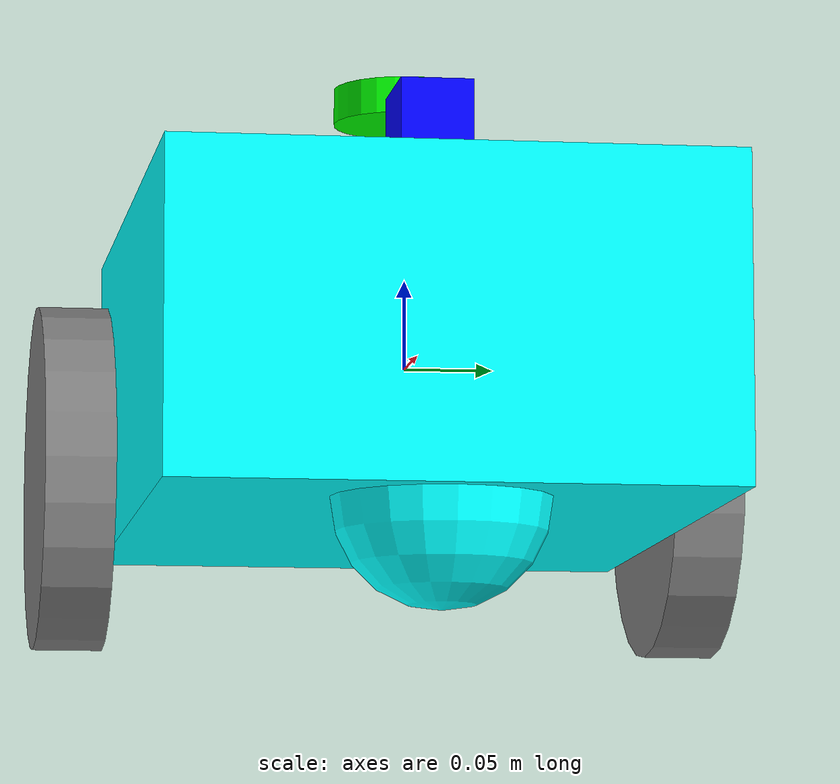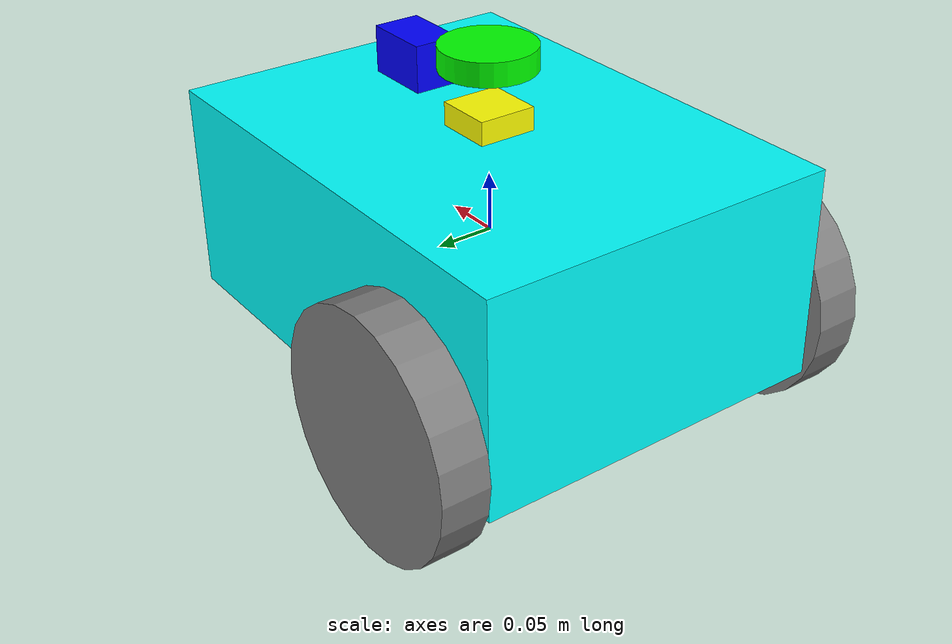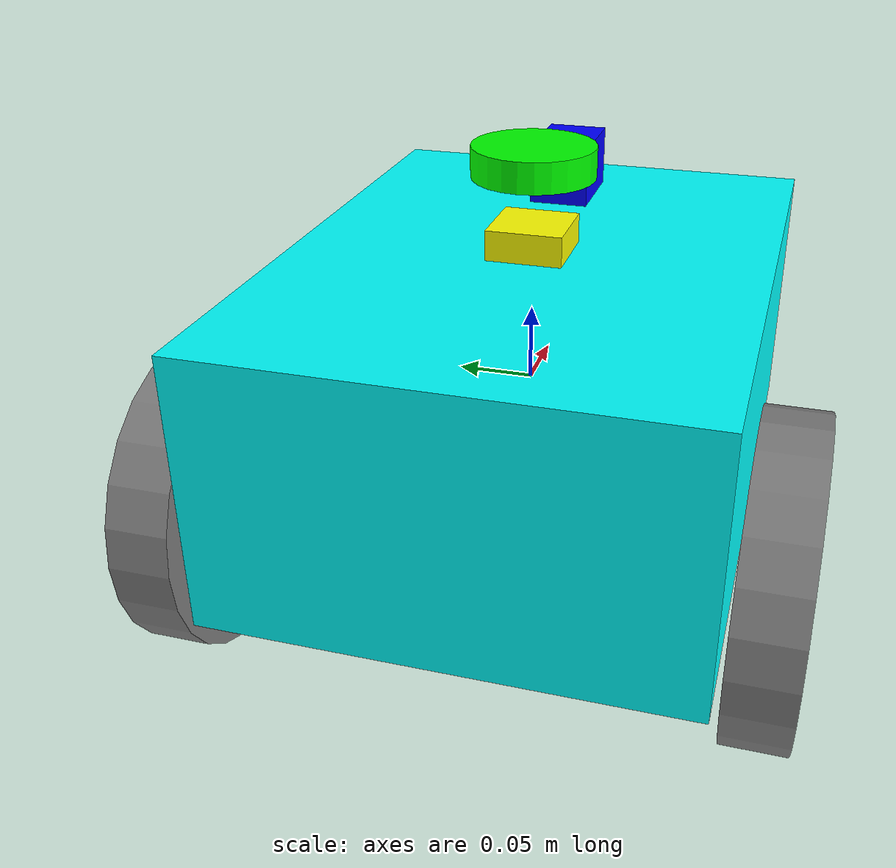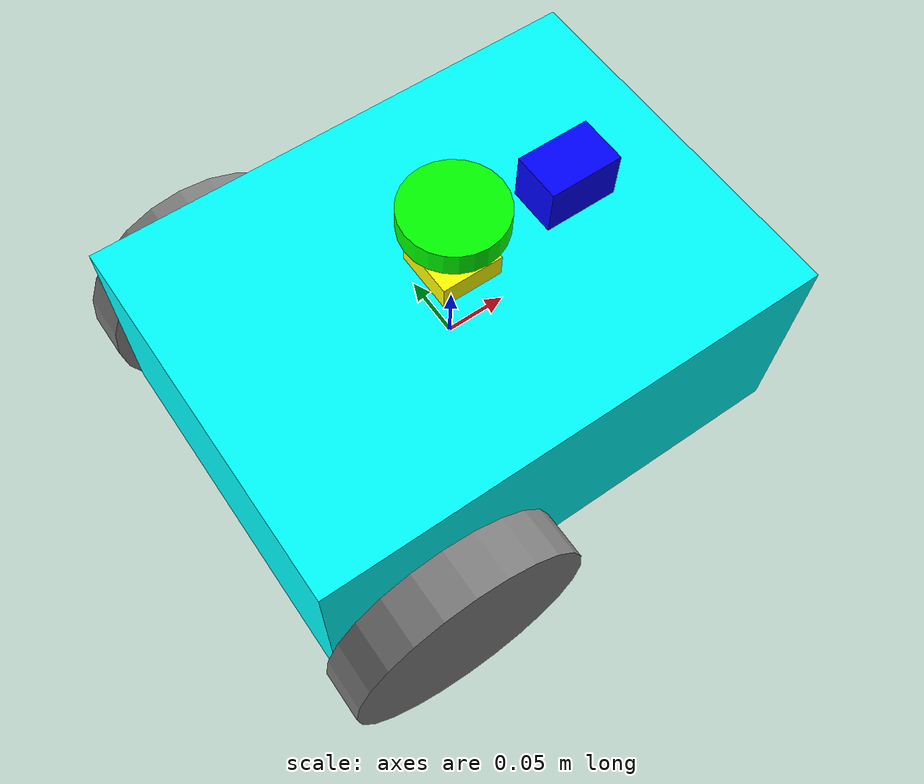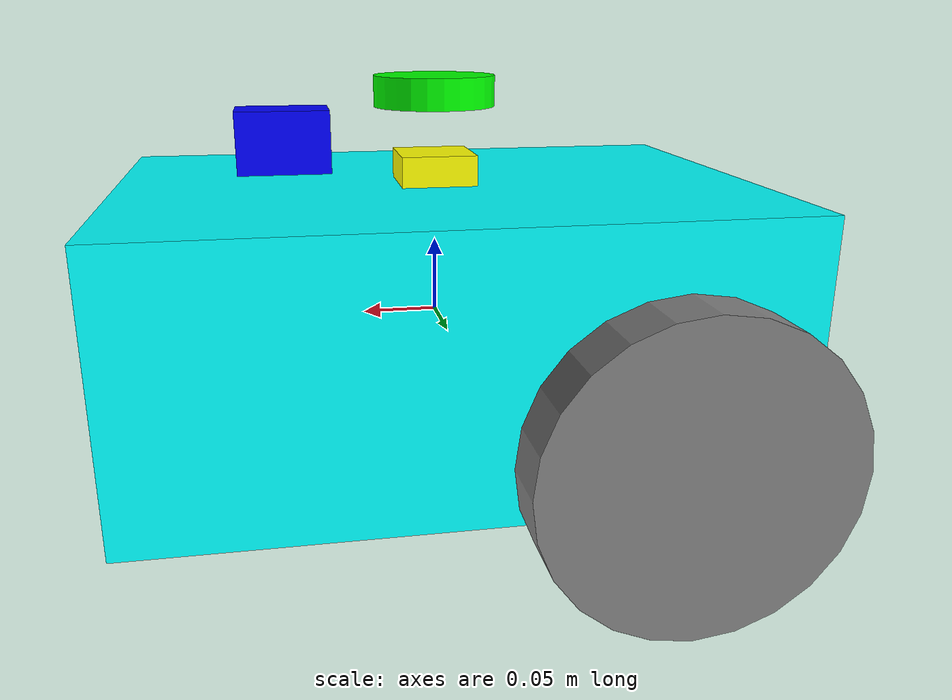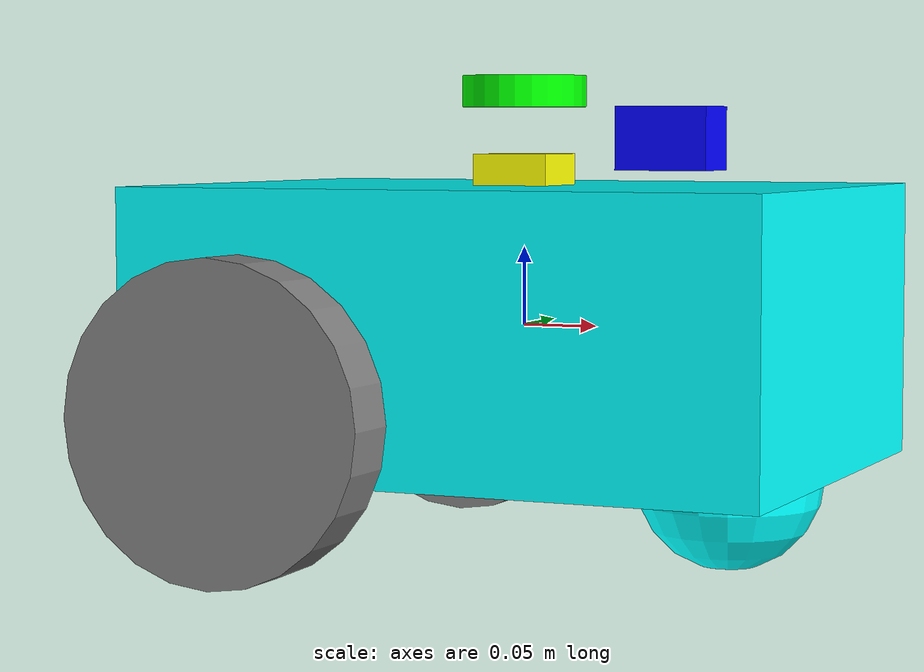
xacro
<?xml version="1.0"?>
<robot name="dif_bot" xmlns:xacro="http://ros.org/wiki/xacro">

  <!-- Propiedades -->
  <xacro:property name="base_width" value="0.31"/>
  <xacro:property name="base_length" value="0.42"/>
  <xacro:property name="base_height" value="0.18"/>
  <xacro:property name="wheel_radius" value="0.10"/>
  <xacro:property name="wheel_width" value="0.04"/>
  <xacro:property name="wheel_ygap" value="0.025"/>
  <xacro:property name="wheel_zoff" value="0.05"/>
  <xacro:property name="wheel_xoff" value="0.12"/>
  <xacro:property name="caster_xoff" value="0.14"/>

  <!-- Macro de inercia para caja -->
  <xacro:macro name="inertial_box" params="mass x y z">
    <inertial>
      <mass value="${mass}"/>
      <inertia ixx="${(1/12)*mass*(y*y+z*z)}"
               iyy="${(1/12)*mass*(x*x+z*z)}"
               izz="${(1/12)*mass*(x*x+y*y)}"
               ixy="0" ixz="0" iyz="0"/>
    </inertial>
  </xacro:macro>

  <!-- Macro de inercia para cilindro -->
  <xacro:macro name="inertial_cylinder" params="mass r h">
    <inertial>
      <mass value="${mass}"/>
      <inertia ixx="${(1/12)*mass*(3*r*r+h*h)}"
               iyy="${(1/12)*mass*(3*r*r+h*h)}"
               izz="${0.5*mass*r*r}"
               ixy="0" ixz="0" iyz="0"/>
    </inertial>
  </xacro:macro>

  <!-- Base -->
  <link name="base_link">
    <collision>
      <geometry>
        <box size="${base_length} ${base_width} ${base_height}"/>
      </geometry>
    </collision>

    <xacro:inertial_box mass="10.0"
                        x="${base_length}" y="${base_width}" z="${base_height}"/>
    <visual>
      <geometry>
        <box size="${base_length} ${base_width} ${base_height}"/>
      </geometry>
      <material name="Cyan">
        <color rgba="0 1.0 1.0 1.0"/>
      </material>
    </visual>
  </link>

  <!-- Footprint -->
  <link name="base_footprint"/>
  <joint name="base_joint" type="fixed">
    <parent link="base_link"/>
    <child link="base_footprint"/>
    <origin xyz="0.0 0.0 ${-(wheel_radius + wheel_zoff)}" rpy="0 0 0"/>
  </joint>

  <!-- Macro de ruedas -->
  <xacro:macro name="wheel" params="prefix x_reflect y_reflect">
    <link name="${prefix}_link">
      <collision>
        <origin xyz="0 0 0" rpy="${pi/2} 0 0"/>
        <geometry>
          <cylinder radius="${wheel_radius}" length="${wheel_width}"/>
        </geometry>
      </collision>

      <visual>
        <origin xyz="0 0 0" rpy="${pi/2} 0 0"/>
        <geometry>
          <cylinder radius="${wheel_radius}" length="${wheel_width}"/>
        </geometry>
        <material name="Gray">
          <color rgba="0.5 0.5 0.5 1.0"/>
        </material>
      </visual>

      <xacro:inertial_cylinder mass="1.0" r="${wheel_radius}" h="${wheel_width}"/>
    </link>

    <joint name="${prefix}_joint" type="continuous">
      <parent link="base_link"/>
      <child link="${prefix}_link"/>
      <origin xyz="${x_reflect*wheel_xoff} ${y_reflect*(base_width/2+wheel_ygap)} ${-wheel_zoff}" rpy="0 0 0"/>
      <axis xyz="0 1 0"/>
    </joint>
  </xacro:macro>

  <!-- Instancias -->
  <xacro:wheel prefix="drivewhl_l" x_reflect="-1" y_reflect="1"/>
  <xacro:wheel prefix="drivewhl_r" x_reflect="-1" y_reflect="-1"/>

  <!-- Caster frontal -->
  <link name="front_caster">
    <collision>
      <geometry>
        <sphere radius="${wheel_radius + wheel_zoff - (base_height/2)}"/>
      </geometry>
    </collision>

    <inertial>
      <mass value="0.5"/>
      <inertia ixx="0.001" iyy="0.001" izz="0.001" ixy="0" ixz="0" iyz="0"/>
    </inertial>

    <visual>
      <geometry>
        <sphere radius="${wheel_radius + wheel_zoff - (base_height/2)}"/>
      </geometry>
      <material name="Cyan">
        <color rgba="0 1.0 1.0 1.0"/>
      </material>
    </visual>
  </link>

  <joint name="caster_joint" type="fixed">
    <parent link="base_link"/>
    <child link="front_caster"/>
    <origin xyz="${caster_xoff} 0.0 ${-(base_height/2)}" rpy="0 0 0"/>
  </joint>

  <!-- Sensores -->
  <xacro:include filename="$(find dif_bot_description)/urdf/sensors.xacro"/>

  <!-- Gazebo DiffDrive -->
  <gazebo>
    <plugin filename="gz-sim-diff-drive-system" name="gz::sim::systems::DiffDrive">
      <left_joint>drivewhl_l_joint</left_joint>
      <right_joint>drivewhl_r_joint</right_joint>
      <wheel_separation>0.36</wheel_separation>
      <wheel_radius>0.10</wheel_radius>
      <topic>cmd_vel</topic>
      <odom_topic>odom</odom_topic>
    </plugin>

    <plugin filename="gz-sim-joint-state-publisher-system" name="gz::sim::systems::JointStatePublisher">
      <joint_name>drivewhl_l_joint</joint_name>
      <joint_name>drivewhl_r_joint</joint_name>
    </plugin>
  </gazebo>

</robot>

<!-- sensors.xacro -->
<robot xmlns:xacro="http://ros.org/wiki/xacro">

  <!-- IMU -->
  <link name="imu_link">
    <visual>
      <geometry>
        <box size="0.05 0.05 0.02"/>
      </geometry>
      <material name="Yellow">
        <color rgba="1.0 1.0 0.0 1.0"/>
      </material>
    </visual>
  </link>

  <joint name="imu_joint" type="fixed">
    <parent link="base_link"/>
    <child link="imu_link"/>
    <origin xyz="0.0 0.0 0.10" rpy="0 0 0"/>
  </joint>

  <!-- LiDAR -->
  <link name="lidar_link">
    <visual>
      <geometry>
        <cylinder radius="0.04" length="0.02"/>
      </geometry>
      <material name="Green">
        <color rgba="0.0 1.0 0.0 1.0"/>
      </material>
    </visual>
  </link>

  <joint name="lidar_joint" type="fixed">
    <parent link="base_link"/>
    <child link="lidar_link"/>
    <origin xyz="0.0 0.0 0.15" rpy="0 0 0"/>
  </joint>

  <!-- Cámara -->
  <link name="camera_link">
    <visual>
      <geometry>
        <box size="0.06 0.04 0.04"/>
      </geometry>
      <material name="Blue">
        <color rgba="0.0 0.0 1.0 1.0"/>
      </material>
    </visual>
  </link>

  <joint name="camera_joint" type="fixed">
    <parent link="base_link"/>
    <child link="camera_link"/>
    <origin xyz="0.10 0.0 0.12" rpy="0 0 0"/>
  </joint>

</robot>
